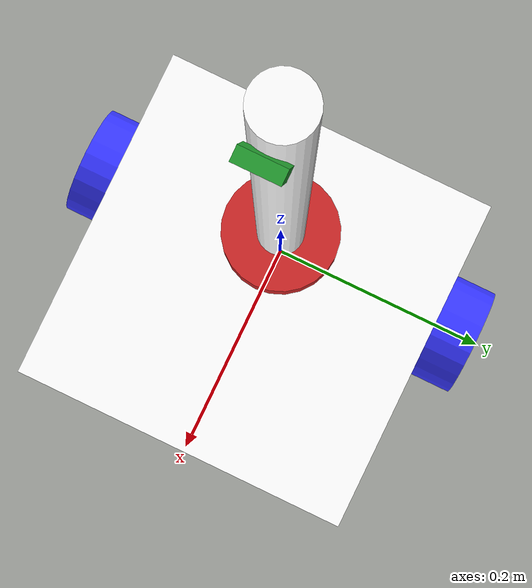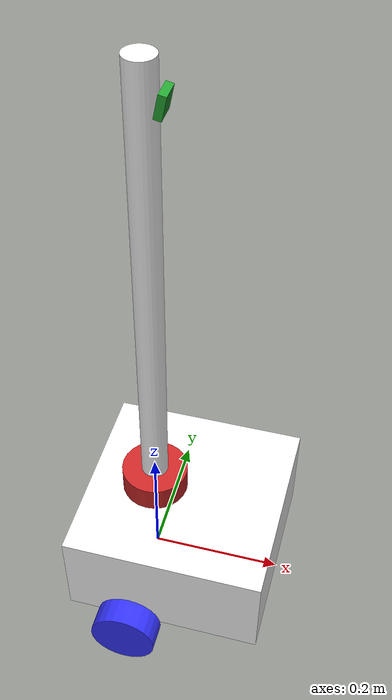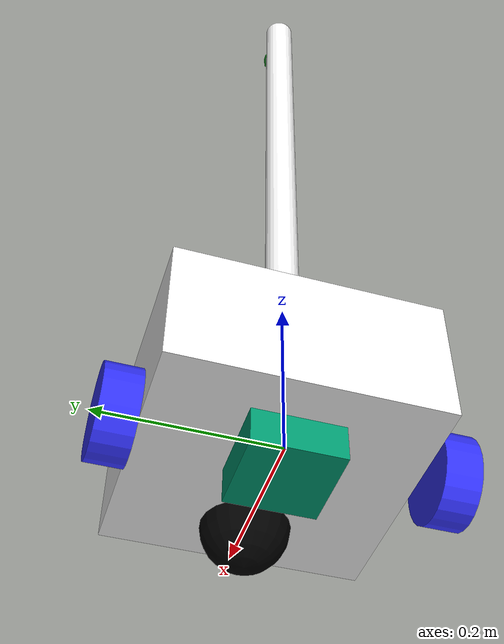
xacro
<?xml version="1.0"?>
<robot xmlns:xacro="http://www.ros.org/wiki/xacro"  name="robot">

    <xacro:include filename="robot_core.xacro" />

    <xacro:include filename="gazebo_control.xacro" />
    <xacro:include filename="lidar.xacro" />
    <xacro:include filename="camera.xacro" />
    <xacro:include filename="imu.xacro" />

</robot>

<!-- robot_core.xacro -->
<robot xmlns:xacro="http://www.ros.org/wiki/xacro" >

    <xacro:include filename="inertial_macros.xacro"/>

    <material name="white">
        <color rgba="1 1 1 1" />
    </material>

    <material name="orange">
        <color rgba="1 0.3 0.1 1"/>
    </material>

    <material name="blue">
        <color rgba="0.2 0.2 1 1"/>
    </material>

    <material name="black">
        <color rgba="0 0 0 1"/>
    </material>

    <!-- BASE LINK -->

    <link name="base_link"/>

    <joint name="base_footprint_joint" type="fixed">
        <parent link="base_link"/>
        <child link="base_footprint"/>
        <origin xyz="0 0 0" rpy="0 0 0"/>
    </joint>

    <link name="base_footprint">
    </link>

    <!-- CHASSIS LINK -->

    <joint name="chassis_joint" type="fixed">
        <parent link="base_link"/>
        <child link="chassis"/>
        <origin xyz="-0.1 0 0"/>
    </joint>

    <link name="chassis">
        <visual>
            <origin xyz="0.15 0 0.075"/>
            <geometry>
                <box size="0.3 0.3 0.15"/>
            </geometry>
            <material name="white"/>
        </visual>
        <collision>
            <origin xyz="0.15 0 0.075"/>
            <geometry>
                <box size="0.3 0.3 0.15"/>
            </geometry>
        </collision>
        <xacro:inertial_box mass="0.5" x="0.3" y="0.3" z="0.15">
            <origin xyz="0.15 0 0.075" rpy="0 0 0"/>
        </xacro:inertial_box>
    </link>

    <gazebo reference="chassis">
        <material>Gazebo/White</material>
    </gazebo>

    <!--NECK LINK-->

    <joint name="neck_joint" type="fixed">
        <parent link="base_link"/>
        <child link="neck_link"/>
        <origin xyz="0.0 0 0.5"/>
    </joint>

    <link name="neck_link">
        <visual>
            <geometry>
                <cylinder radius="0.02" length="0.7"/>
            </geometry>
            <material name="white"/>
        </visual>
        <collision>
            <geometry>
                <cylinder radius="0.02" length="0.7"/>
            </geometry>
        </collision>
        <xacro:inertial_cylinder mass="0.1" length="0.7" radius="0.02">
            <origin xyz="0 0 0" rpy="0 0 0"/>
        </xacro:inertial_cylinder>
    </link>

    <gazebo reference="neck_link">
        <material>Gazebo/White</material>
    </gazebo>

    <!-- LEFT WHEEL LINK -->

    <joint name="left_wheel_joint" type="continuous">
        <parent link="base_link"/>
        <child link="left_wheel"/>
        <origin xyz="0 0.175 0" rpy="-${pi/2} 0 0" />
        <axis xyz="0 0 1"/>
    </joint>

    <link name="left_wheel">
        <visual>
            <geometry>
                <cylinder radius="0.05" length="0.04"/>
            </geometry>
            <material name="blue"/>
        </visual>
        <collision>
            <geometry>
                <cylinder radius="0.05" length="0.04"/>
            </geometry>
        </collision>
        <xacro:inertial_cylinder mass="0.1" length="0.04" radius="0.05">
            <origin xyz="0 0 0" rpy="0 0 0"/>
        </xacro:inertial_cylinder>
    </link>

    <gazebo reference="left_wheel">
        <material>Gazebo/Blue</material>
    </gazebo>

    <!-- RIGHT WHEEL LINK -->

    <joint name="right_wheel_joint" type="continuous">
        <parent link="base_link"/>
        <child link="right_wheel"/>
        <origin xyz="0 -0.175 0" rpy="${pi/2} 0 0" />
        <axis xyz="0 0 -1"/>
    </joint>

    <link name="right_wheel">
        <visual>
            <geometry>
                <cylinder radius="0.05" length="0.04"/>
            </geometry>
            <material name="blue"/>
        </visual>
        <collision>
            <geometry>
                <cylinder radius="0.05" length="0.04"/>
            </geometry>
        </collision>
        <xacro:inertial_cylinder mass="0.1" length="0.04" radius="0.05">
            <origin xyz="0 0 0" rpy="0 0 0"/>
        </xacro:inertial_cylinder>
    </link>

    <gazebo reference="right_wheel">
        <material>Gazebo/Blue</material>
    </gazebo>

    <!-- CASTER WHEEL LINK -->

    <joint name="caster_wheel_joint" type="fixed">
        <parent link="chassis"/>
        <child link="caster_wheel"/>
        <origin xyz="0.24 0 0"/>
    </joint>

    <link name="caster_wheel">
        <visual>
            <geometry>
                <sphere radius="0.05"/>
            </geometry>
            <material name="black"/>
        </visual>
        <collision>
            <geometry>
                <sphere radius="0.05"/>
            </geometry>
        </collision>
        <xacro:inertial_sphere mass="0.1" radius="0.05">
            <origin xyz="0 0 0" rpy="0 0 0"/>
        </xacro:inertial_sphere>
    </link>

    <gazebo reference="caster_wheel">
        <material>Gazebo/Black</material>
        <mu1 value="0.001"/>
        <mu2 value="0.001"/>
    </gazebo>

</robot>

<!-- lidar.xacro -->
<robot xmlns:xacro="http://www.ros.org/wiki/xacro" >

    <joint name="laser_joint" type="fixed">
        <parent link="base_link"/>
        <child link="laser_frame"/>
        <origin xyz="0.0 0 0.17" rpy="0 0 0"/>
    </joint>

    <link name="laser_frame">
        <visual>
            <geometry>
                <cylinder radius="0.05" length="0.04"/>
            </geometry>
            <material name="red"/>
        </visual>
        <collision>
            <geometry>
                <cylinder radius="0.05" length="0.04"/>
            </geometry>
        </collision>
        <xacro:inertial_cylinder mass="0.1" length="0.04" radius="0.05">
            <origin xyz="0 0 0" rpy="0 0 0"/>
        </xacro:inertial_cylinder>
    </link>

    <gazebo reference="laser_frame">
        <material>Gazebo/Red</material>

        <sensor name="laser" type="ray">
            <pose> 0 0 0 0 0 0 </pose>
            <visualize>false</visualize>
            <update_rate>10</update_rate>
            <ray>
                <scan>
                    <horizontal>
                        <samples>360</samples>
                        <min_angle>-3.14</min_angle>
                        <max_angle>3.14</max_angle>
                    </horizontal>
                </scan>
                <range>
                    <min>0.3</min>
                    <max>10</max>
                </range>
            </ray>
            <plugin name="laser_controller" filename="libgazebo_ros_ray_sensor.so">
                <ros>
                    <argument>~/out:=scan</argument>
                </ros>
                <output_type>sensor_msgs/LaserScan</output_type>
                <frame_name>laser_frame</frame_name>
            </plugin>
        </sensor>
    </gazebo>

</robot>

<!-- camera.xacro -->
<robot xmlns:xacro="http://www.ros.org/wiki/xacro" >

    <joint name="camera_joint" type="fixed">
        <parent link="neck_link"/>
        <child link="camera_link"/>
        <origin xyz="0.025 0 0.3" rpy="0 ${pi/15} 0"/>
    </joint>

    <link name="camera_link">
        <visual>
            <geometry>
                <box size="0.01 0.03 0.03"/>
            </geometry>
            <material name="green"/>
        </visual>
    </link>

    <joint name="camera_optical_joint" type="fixed">
        <parent link="camera_link"/>
        <child link="camera_link_optical"/>
        <origin xyz="0 0 0" rpy="${-pi/2} 0 ${-pi/2}"/>
    </joint>

    <link name="camera_link_optical"></link>

    <gazebo reference="camera_link">
        <material>Gazebo/Red</material>

        <sensor name="camera" type="camera">
            <pose> 0 0 0 0 0 0 </pose>
            <visualize>true</visualize>
            <update_rate>10</update_rate>
            <camera>
                <horizontal_fov>1.089</horizontal_fov>
                <image>
                    <format>R8G8B8</format>
                    <width>640</width>
                    <height>480</height>
                </image>
                <clip>
                    <near>0.05</near>
                    <far>8.0</far>
                </clip>
            </camera>
            <plugin name="camera_controller" filename="libgazebo_ros_camera.so">
                <frame_name>camera_link_optical</frame_name>
            </plugin>
        </sensor>
    </gazebo>

</robot>

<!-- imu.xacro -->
<robot xmlns:xacro="http://www.ros.org/wiki/xacro" >
    <link name="imu_link">
        <visual>
            <geometry>
            <box size="0.1 0.1 0.1"/>
            </geometry>
        </visual>

        <collision>
            <geometry>
            <box size="0.1 0.1 0.1"/>
            </geometry>
        </collision>
    </link>

    <joint name="imu_joint" type="fixed">
    <parent link="base_link"/>
    <child link="imu_link"/>
    <origin xyz="0 0 0.01"/>
    </joint>

    <gazebo reference="imu_link">
    <sensor name="imu_sensor" type="imu">
    <plugin filename="libgazebo_ros_imu_sensor.so" name="imu_plugin">
        <ros>
            <namespace>/demo</namespace>
            <remapping>~/out:=imu</remapping>
        </ros>
        <initial_orientation_as_reference>false</initial_orientation_as_reference>
        </plugin>
        <always_on>true</always_on>
        <update_rate>100</update_rate>
        <visualize>true</visualize>
        <imu>
        <angular_velocity>
            <x>
            <noise type="gaussian">
                <mean>0.0</mean>
                <stddev>2e-4</stddev>
                <bias_mean>0.0000075</bias_mean>
                <bias_stddev>0.0000008</bias_stddev>
            </noise>
            </x>
            <y>
            <noise type="gaussian">
                <mean>0.0</mean>
                <stddev>2e-4</stddev>
                <bias_mean>0.0000075</bias_mean>
                <bias_stddev>0.0000008</bias_stddev>
            </noise>
            </y>
            <z>
            <noise type="gaussian">
                <mean>0.0</mean>
                <stddev>2e-4</stddev>
                <bias_mean>0.0000075</bias_mean>
                <bias_stddev>0.0000008</bias_stddev>
            </noise>
            </z>
        </angular_velocity>
        <linear_acceleration>
            <x>
            <noise type="gaussian">
                <mean>0.0</mean>
                <stddev>1.7e-2</stddev>
                <bias_mean>0.1</bias_mean>
                <bias_stddev>0.001</bias_stddev>
            </noise>
            </x>
            <y>
            <noise type="gaussian">
                <mean>0.0</mean>
                <stddev>1.7e-2</stddev>
                <bias_mean>0.1</bias_mean>
                <bias_stddev>0.001</bias_stddev>
            </noise>
            </y>
            <z>
            <noise type="gaussian">
                <mean>0.0</mean>
                <stddev>1.7e-2</stddev>
                <bias_mean>0.1</bias_mean>
                <bias_stddev>0.001</bias_stddev>
            </noise>
            </z>
        </linear_acceleration>
        </imu>
    </sensor>
    </gazebo>
</robot>
